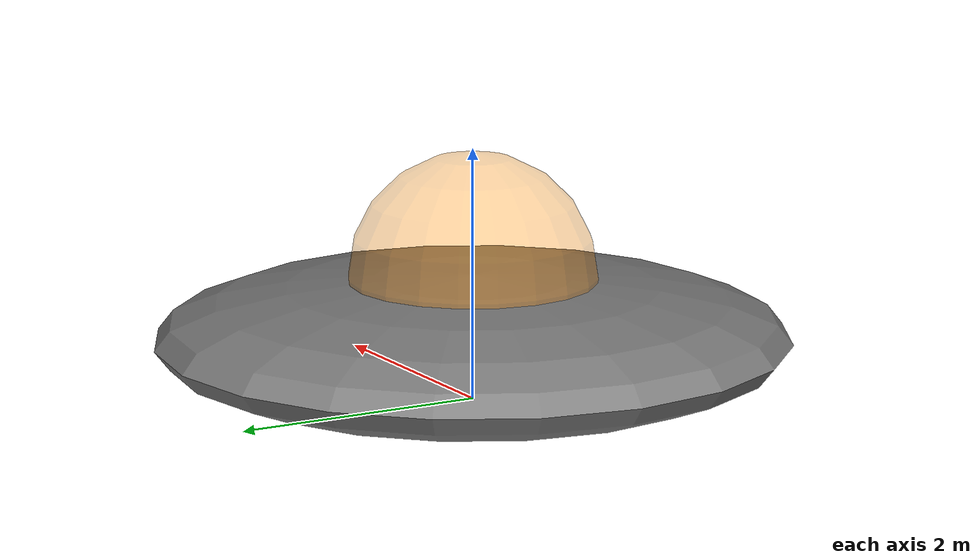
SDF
<?xml version="1.0" ?>
<sdf version="1.9">
  <model name="flying_saucer">
    <!-- A great place to put a tractor beam -->
    <frame name="bottom_center"/>

    <!-- Ellipsoid body of the craft -->
    <link name="spacecraft">
      <pose relative_to="bottom_center">0 0 0.5 0 0 0</pose>
      <visual name="visual">
        <geometry>
          <ellipsoid>
            <radii>2.5 2.5 0.5</radii>
          </ellipsoid>
        </geometry>
        <material>
          <diffuse>0.5 0.5 0.5 1.0</diffuse>
        </material>
      </visual>
      <collision name="collision">
        <geometry>
          <ellipsoid>
            <radii>2.5 2.5 0.5</radii>
          </ellipsoid>
        </geometry>
      </collision>
      <inertial>
        <mass>1000</mass>
        <inertia>
          <ixx>1300</ixx>
          <ixy>0</ixy>
          <ixz>0</ixz>
          <iyy>1300</iyy>
          <iyz>0</iyz>
          <izz>2500</izz>
        </inertia>
      </inertial>
    </link>

    <!-- Spherical translucent shell for pilot to peer out of -->
    <link name="lookout">
      <pose relative_to="spacecraft">0 0 0.49 0 0 0</pose>
      <visual name="visual">
        <geometry>
          <sphere>
            <radius>0.98</radius>
          </sphere>
        </geometry>
        <material>
          <diffuse>1.0 0.55 0.0 0.35</diffuse>
        </material>
      </visual>
      <collision name="collision">
        <geometry>
          <sphere>
            <radius>0.98</radius>
          </sphere>
        </geometry>
      </collision>
      <inertial>
        <mass>100</mass>
        <inertia>
          <ixx>65.34</ixx>
          <ixy>0</ixy>
          <ixz>0</ixz>
          <iyy>65.34</iyy>
          <iyz>0</iyz>
          <izz>65.34</izz>
        </inertia>
      </inertial>
    </link>

    <!-- Combine links -->
    <joint name="weld" type="fixed">
      <parent>spacecraft</parent>
      <child>lookout</child>
    </joint>
  </model>
</sdf>
